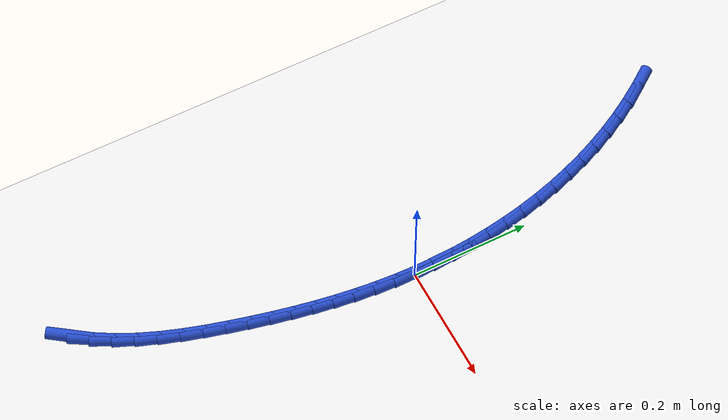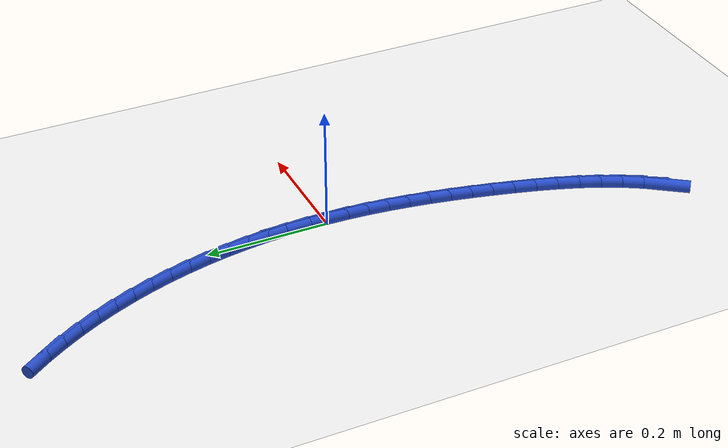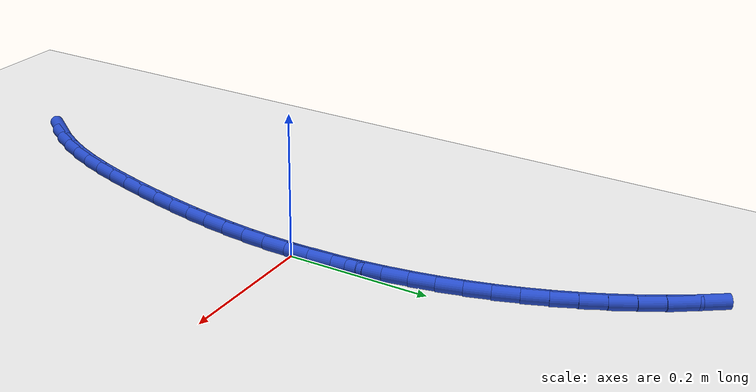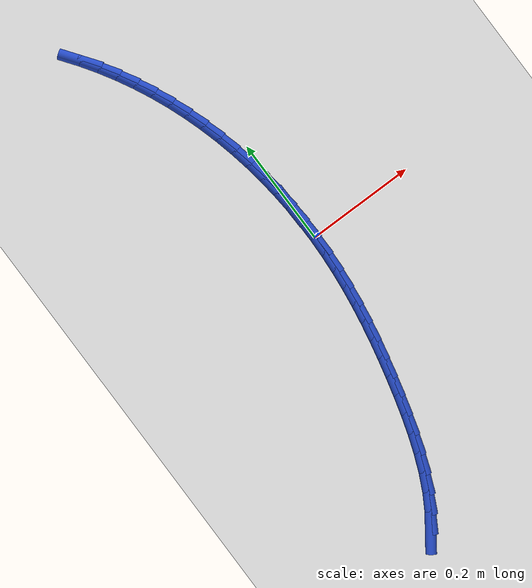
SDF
<sdf version="1.6">
 <world name="default">
  <model name="ground_plane">
   <static>1</static>
   <link name="link">
    <collision name="collision">
     <geometry><plane><normal>0 0 1</normal><size>100 100</size></plane></geometry>
     <surface><friction><ode><mu>100</mu><mu2>50</mu2></ode></friction></surface>
    </collision>
    <visual name="visual">
     <cast_shadows>0</cast_shadows>
     <geometry><plane><normal>0 0 1</normal><size>100 100</size></plane></geometry>
     <material>
      <script><uri>file://media/materials/scripts/gazebo.material</uri><name>Gazebo/WhiteGlow</name></script>
     </material>
    </visual>
   </link>
  </model>
  <model name="line">
   <link name="link_0">
    <pose>-2.5153490401663703e-17 9.020562075079397e-17 0.01 0 1.57 -1.566581821676759</pose>
    <collision name="collision">
     <geometry><cylinder><radius>0.01</radius><length>0.08</length></cylinder></geometry>
    </collision>
    <visual name="visual">
     <material>
      <script><name>Gazebo/Blue</name><uri>file://media/materials/scripts/gazebo.material</uri></script>
     </material>
     <geometry><cylinder><radius>0.01</radius><length>0.08</length></cylinder></geometry>
    </visual>
   </link>
   <link name="link_1">
    <pose>-0.00014618991644907046 0.034687121454547734 0.01 0 1.57 -1.5289425890424635</pose>
    <collision name="collision">
     <geometry><cylinder><radius>0.01</radius><length>0.08</length></cylinder></geometry>
    </collision>
    <visual name="visual">
     <material>
      <script><name>Gazebo/Blue</name><uri>file://media/materials/scripts/gazebo.material</uri></script>
     </material>
     <geometry><cylinder><radius>0.01</radius><length>0.08</length></cylinder></geometry>
    </visual>
   </link>
   <link name="link_2">
    <pose>-0.0016028432533281537 0.06947021989820973 0.01 0 1.57 -1.4912024418300496</pose>
    <collision name="collision">
     <geometry><cylinder><radius>0.01</radius><length>0.08</length></cylinder></geometry>
    </collision>
    <visual name="visual">
     <material>
      <script><name>Gazebo/Blue</name><uri>file://media/materials/scripts/gazebo.material</uri></script>
     </material>
     <geometry><cylinder><radius>0.01</radius><length>0.08</length></cylinder></geometry>
    </visual>
   </link>
   <link name="link_3">
    <pose>-0.004378318121980279 0.10426700538823463 0.01 0 1.57 -1.453205174928311</pose>
    <collision name="collision">
     <geometry><cylinder><radius>0.01</radius><length>0.08</length></cylinder></geometry>
    </collision>
    <visual name="visual">
     <material>
      <script><name>Gazebo/Blue</name><uri>file://media/materials/scripts/gazebo.material</uri></script>
     </material>
     <geometry><cylinder><radius>0.01</radius><length>0.08</length></cylinder></geometry>
    </visual>
   </link>
   <link name="link_4">
    <pose>-0.00848097263374845 0.138995187981871 0.01 0 1.57 -1.4147977861607879</pose>
    <collision name="collision">
     <geometry><cylinder><radius>0.01</radius><length>0.08</length></cylinder></geometry>
    </collision>
    <visual name="visual">
     <material>
      <script><name>Gazebo/Blue</name><uri>file://media/materials/scripts/gazebo.material</uri></script>
     </material>
     <geometry><cylinder><radius>0.01</radius><length>0.08</length></cylinder></geometry>
    </visual>
   </link>
   <link name="link_5">
    <pose>-0.013919164899975668 0.17357247773636725 0.01 0 1.57 -1.3758302296160616</pose>
    <collision name="collision">
     <geometry><cylinder><radius>0.01</radius><length>0.08</length></cylinder></geometry>
    </collision>
    <visual name="visual">
     <material>
      <script><name>Gazebo/Blue</name><uri>file://media/materials/scripts/gazebo.material</uri></script>
     </material>
     <geometry><cylinder><radius>0.01</radius><length>0.08</length></cylinder></geometry>
    </visual>
   </link>
   <link name="link_6">
    <pose>-0.020701253032004947 0.20791658470897217 0.01 0 1.57 -1.3361554402698805</pose>
    <collision name="collision">
     <geometry><cylinder><radius>0.01</radius><length>0.08</length></cylinder></geometry>
    </collision>
    <visual name="visual">
     <material>
      <script><name>Gazebo/Blue</name><uri>file://media/materials/scripts/gazebo.material</uri></script>
     </material>
     <geometry><cylinder><radius>0.01</radius><length>0.08</length></cylinder></geometry>
    </visual>
   </link>
   <link name="link_7">
    <pose>-0.028835595141179296 0.24194521895693413 0.01 0 1.57 -1.2956296958626436</pose>
    <collision name="collision">
     <geometry><cylinder><radius>0.01</radius><length>0.08</length></cylinder></geometry>
    </collision>
    <visual name="visual">
     <material>
      <script><name>Gazebo/Blue</name><uri>file://media/materials/scripts/gazebo.material</uri></script>
     </material>
     <geometry><cylinder><radius>0.01</radius><length>0.08</length></cylinder></geometry>
    </visual>
   </link>
   <link name="link_8">
    <pose>-0.03833054933884168 0.27557609053750165 0.01 0 1.57 -1.254119709960961</pose>
    <collision name="collision">
     <geometry><cylinder><radius>0.01</radius><length>0.08</length></cylinder></geometry>
    </collision>
    <visual name="visual">
     <material>
      <script><name>Gazebo/Blue</name><uri>file://media/materials/scripts/gazebo.material</uri></script>
     </material>
     <geometry><cylinder><radius>0.01</radius><length>0.08</length></cylinder></geometry>
    </visual>
   </link>
   <link name="link_9">
    <pose>-0.049194401081264896 0.30872739603644345 0.01 0 1.57 -1.211726273923208</pose>
    <collision name="collision">
     <geometry><cylinder><radius>0.01</radius><length>0.08</length></cylinder></geometry>
    </collision>
    <visual name="visual">
     <material>
      <script><name>Gazebo/Blue</name><uri>file://media/materials/scripts/gazebo.material</uri></script>
     </material>
     <geometry><cylinder><radius>0.01</radius><length>0.08</length></cylinder></geometry>
    </visual>
   </link>
   <link name="link_10">
    <pose>-0.06143296571920128 0.3413338728917935 0.01 0 1.57 -1.1686869872502963</pose>
    <collision name="collision">
     <geometry><cylinder><radius>0.01</radius><length>0.08</length></cylinder></geometry>
    </collision>
    <visual name="visual">
     <material>
      <script><name>Gazebo/Blue</name><uri>file://media/materials/scripts/gazebo.material</uri></script>
     </material>
     <geometry><cylinder><radius>0.01</radius><length>0.08</length></cylinder></geometry>
    </visual>
   </link>
   <link name="link_11">
    <pose>-0.07504904100723751 0.37335046561855495 0.01 0 1.57 -1.125028070891858</pose>
    <collision name="collision">
     <geometry><cylinder><radius>0.01</radius><length>0.08</length></cylinder></geometry>
    </collision>
    <visual name="visual">
     <material>
      <script><name>Gazebo/Blue</name><uri>file://media/materials/scripts/gazebo.material</uri></script>
     </material>
     <geometry><cylinder><radius>0.01</radius><length>0.08</length></cylinder></geometry>
    </visual>
   </link>
   <link name="link_12">
    <pose>-0.0900452411691731 0.4047333477300911 0.01 0 1.57 -1.0807691425282067</pose>
    <collision name="collision">
     <geometry><cylinder><radius>0.01</radius><length>0.08</length></cylinder></geometry>
    </collision>
    <visual name="visual">
     <material>
      <script><name>Gazebo/Blue</name><uri>file://media/materials/scripts/gazebo.material</uri></script>
     </material>
     <geometry><cylinder><radius>0.01</radius><length>0.08</length></cylinder></geometry>
    </visual>
   </link>
   <link name="link_13">
    <pose>-0.10642418042880772 0.4354386927397659 0.01 0 1.57 -1.035939811634155</pose>
    <collision name="collision">
     <geometry><cylinder><radius>0.01</radius><length>0.08</length></cylinder></geometry>
    </collision>
    <visual name="visual">
     <material>
      <script><name>Gazebo/Blue</name><uri>file://media/materials/scripts/gazebo.material</uri></script>
     </material>
     <geometry><cylinder><radius>0.01</radius><length>0.08</length></cylinder></geometry>
    </visual>
   </link>
   <link name="link_14">
    <pose>-0.124188473009941 0.465422674160943 0.01 0 1.57 -0.9905801278837809</pose>
    <collision name="collision">
     <geometry><cylinder><radius>0.01</radius><length>0.08</length></cylinder></geometry>
    </collision>
    <visual name="visual">
     <material>
      <script><name>Gazebo/Blue</name><uri>file://media/materials/scripts/gazebo.material</uri></script>
     </material>
     <geometry><cylinder><radius>0.01</radius><length>0.08</length></cylinder></geometry>
    </visual>
   </link>
   <link name="link_15">
    <pose>-0.1433407331363724 0.494641465506986 0.01 0 1.57 -0.9447408046540455</pose>
    <collision name="collision">
     <geometry><cylinder><radius>0.01</radius><length>0.08</length></cylinder></geometry>
    </collision>
    <visual name="visual">
     <material>
      <script><name>Gazebo/Blue</name><uri>file://media/materials/scripts/gazebo.material</uri></script>
     </material>
     <geometry><cylinder><radius>0.01</radius><length>0.08</length></cylinder></geometry>
    </visual>
   </link>
   <link name="link_194">
    <pose>-0.1474101521458303 -0.5340954955599487 0.01 0 1.57 0.9484944572847146</pose>
    <collision name="collision">
     <geometry><cylinder><radius>0.01</radius><length>0.08</length></cylinder></geometry>
    </collision>
    <visual name="visual">
     <material>
      <script><name>Gazebo/Blue</name><uri>file://media/materials/scripts/gazebo.material</uri></script>
     </material>
     <geometry><cylinder><radius>0.01</radius><length>0.08</length></cylinder></geometry>
    </visual>
   </link>
   <link name="link_195">
    <pose>-0.1274312375348535 -0.5062460405375817 0.01 0 1.57 1.0378418548993338</pose>
    <collision name="collision">
     <geometry><cylinder><radius>0.01</radius><length>0.08</length></cylinder></geometry>
    </collision>
    <visual name="visual">
     <material>
      <script><name>Gazebo/Blue</name><uri>file://media/materials/scripts/gazebo.material</uri></script>
     </material>
     <geometry><cylinder><radius>0.01</radius><length>0.08</length></cylinder></geometry>
    </visual>
   </link>
   <link name="link_196">
    <pose>-0.10983755748766393 -0.4764208169041391 0.01 0 1.57 1.1136807100409913</pose>
    <collision name="collision">
     <geometry><cylinder><radius>0.01</radius><length>0.08</length></cylinder></geometry>
    </collision>
    <visual name="visual">
     <material>
      <script><name>Gazebo/Blue</name><uri>file://media/materials/scripts/gazebo.material</uri></script>
     </material>
     <geometry><cylinder><radius>0.01</radius><length>0.08</length></cylinder></geometry>
    </visual>
   </link>
   <link name="link_197">
    <pose>-0.0943613755796027 -0.44495630358976923 0.01 0 1.57 1.1766979238736979</pose>
    <collision name="collision">
     <geometry><cylinder><radius>0.01</radius><length>0.08</length></cylinder></geometry>
    </collision>
    <visual name="visual">
     <material>
      <script><name>Gazebo/Blue</name><uri>file://media/materials/scripts/gazebo.material</uri></script>
     </material>
     <geometry><cylinder><radius>0.01</radius><length>0.08</length></cylinder></geometry>
    </visual>
   </link>
   <link name="link_198">
    <pose>-0.0807349553860097 -0.41218897952461825 0.01 0 1.57 1.2278601823866246</pose>
    <collision name="collision">
     <geometry><cylinder><radius>0.01</radius><length>0.08</length></cylinder></geometry>
    </collision>
    <visual name="visual">
     <material>
      <script><name>Gazebo/Blue</name><uri>file://media/materials/scripts/gazebo.material</uri></script>
     </material>
     <geometry><cylinder><radius>0.01</radius><length>0.08</length></cylinder></geometry>
    </visual>
   </link>
   <link name="link_199">
    <pose>-0.06869056048222522 -0.3784553236388328 0.01 0 1.57 1.2681365698759766</pose>
    <collision name="collision">
     <geometry><cylinder><radius>0.01</radius><length>0.08</length></cylinder></geometry>
    </collision>
    <visual name="visual">
     <material>
      <script><name>Gazebo/Blue</name><uri>file://media/materials/scripts/gazebo.material</uri></script>
     </material>
     <geometry><cylinder><radius>0.01</radius><length>0.08</length></cylinder></geometry>
    </visual>
   </link>
   <link name="link_200">
    <pose>-0.0579604544435896 -0.3440918148625598 0.01 0 1.57 1.2983328339056213</pose>
    <collision name="collision">
     <geometry><cylinder><radius>0.01</radius><length>0.08</length></cylinder></geometry>
    </collision>
    <visual name="visual">
     <material>
      <script><name>Gazebo/Blue</name><uri>file://media/materials/scripts/gazebo.material</uri></script>
     </material>
     <geometry><cylinder><radius>0.01</radius><length>0.08</length></cylinder></geometry>
    </visual>
   </link>
   <link name="link_201">
    <pose>-0.04827690084544315 -0.30943493212594614 0.01 0 1.57 1.319376936712057</pose>
    <collision name="collision">
     <geometry><cylinder><radius>0.01</radius><length>0.08</length></cylinder></geometry>
    </collision>
    <visual name="visual">
     <material>
      <script><name>Gazebo/Blue</name><uri>file://media/materials/scripts/gazebo.material</uri></script>
     </material>
     <geometry><cylinder><radius>0.01</radius><length>0.08</length></cylinder></geometry>
    </visual>
   </link>
   <link name="link_202">
    <pose>-0.03938308991113787 -0.274809047595478 0.01 0 1.57 1.3377620894517483</pose>
    <collision name="collision">
     <geometry><cylinder><radius>0.01</radius><length>0.08</length></cylinder></geometry>
    </collision>
    <visual name="visual">
     <material>
      <script><name>Gazebo/Blue</name><uri>file://media/materials/scripts/gazebo.material</uri></script>
     </material>
     <geometry><cylinder><radius>0.01</radius><length>0.08</length></cylinder></geometry>
    </visual>
   </link>
   <link name="link_203">
    <pose>-0.03120186679639867 -0.2403394751533298 0.01 0 1.57 1.358650418880572</pose>
    <collision name="collision">
     <geometry><cylinder><radius>0.01</radius><length>0.08</length></cylinder></geometry>
    </collision>
    <visual name="visual">
     <material>
      <script><name>Gazebo/Blue</name><uri>file://media/materials/scripts/gazebo.material</uri></script>
     </material>
     <geometry><cylinder><radius>0.01</radius><length>0.08</length></cylinder></geometry>
    </visual>
   </link>
   <link name="link_204">
    <pose>-0.02380313630836346 -0.2059885860810133 0.01 0 1.57 1.3821945628157863</pose>
    <collision name="collision">
     <geometry><cylinder><radius>0.01</radius><length>0.08</length></cylinder></geometry>
    </collision>
    <visual name="visual">
     <material>
      <script><name>Gazebo/Blue</name><uri>file://media/materials/scripts/gazebo.material</uri></script>
     </material>
     <geometry><cylinder><radius>0.01</radius><length>0.08</length></cylinder></geometry>
    </visual>
   </link>
   <link name="link_205">
    <pose>-0.01726112883022979 -0.17171395890685737 0.01 0 1.57 1.408369493025649</pose>
    <collision name="collision">
     <geometry><cylinder><radius>0.01</radius><length>0.08</length></cylinder></geometry>
    </collision>
    <visual name="visual">
     <material>
      <script><name>Gazebo/Blue</name><uri>file://media/materials/scripts/gazebo.material</uri></script>
     </material>
     <geometry><cylinder><radius>0.01</radius><length>0.08</length></cylinder></geometry>
    </visual>
   </link>
   <link name="link_206">
    <pose>-0.01165007474519526 -0.1374731721591911 0.01 0 1.57 1.4371178870464514</pose>
    <collision name="collision">
     <geometry><cylinder><radius>0.01</radius><length>0.08</length></cylinder></geometry>
    </collision>
    <visual name="visual">
     <material>
      <script><name>Gazebo/Blue</name><uri>file://media/materials/scripts/gazebo.material</uri></script>
     </material>
     <geometry><cylinder><radius>0.01</radius><length>0.08</length></cylinder></geometry>
    </visual>
   </link>
   <link name="link_207">
    <pose>-0.00704420443645744 -0.10322380436634325 0.01 0 1.57 1.4683452651286175</pose>
    <collision name="collision">
     <geometry><cylinder><radius>0.01</radius><length>0.08</length></cylinder></geometry>
    </collision>
    <visual name="visual">
     <material>
      <script><name>Gazebo/Blue</name><uri>file://media/materials/scripts/gazebo.material</uri></script>
     </material>
     <geometry><cylinder><radius>0.01</radius><length>0.08</length></cylinder></geometry>
    </visual>
   </link>
   <link name="link_208">
    <pose>-0.0035177482872139083 -0.06892343405664282 0.01 0 1.57 1.5019159412513923</pose>
    <collision name="collision">
     <geometry><cylinder><radius>0.01</radius><length>0.08</length></cylinder></geometry>
    </collision>
    <visual name="visual">
     <material>
      <script><name>Gazebo/Blue</name><uri>file://media/materials/scripts/gazebo.material</uri></script>
     </material>
     <geometry><cylinder><radius>0.01</radius><length>0.08</length></cylinder></geometry>
    </visual>
   </link>
   <link name="link_209">
    <pose>-0.0011449366806621998 -0.034529639758417906 0.01 0 1.57 1.5376503871964244</pose>
    <collision name="collision">
     <geometry><cylinder><radius>0.01</radius><length>0.08</length></cylinder></geometry>
    </collision>
    <visual name="visual">
     <material>
      <script><name>Gazebo/Blue</name><uri>file://media/materials/scripts/gazebo.material</uri></script>
     </material>
     <geometry><cylinder><radius>0.01</radius><length>0.08</length></cylinder></geometry>
    </visual>
   </link>
   <link name="link_210">
    <pose>-2.168404344971009e-17 9.71445146547012e-17 0.01 0 1.57 -1.5662680342777031</pose>
    <collision name="collision">
     <geometry><cylinder><radius>0.01</radius><length>0.08</length></cylinder></geometry>
    </collision>
    <visual name="visual">
     <material>
      <script><name>Gazebo/Blue</name><uri>file://media/materials/scripts/gazebo.material</uri></script>
     </material>
     <geometry><cylinder><radius>0.01</radius><length>0.08</length></cylinder></geometry>
    </visual>
   </link>
   <link name="link_211">
    <pose>-0.00015716862842482613 0.0347079066902847 0.01 0 1.57 -1.526920523955584</pose>
    <collision name="collision">
     <geometry><cylinder><radius>0.01</radius><length>0.08</length></cylinder></geometry>
    </collision>
    <visual name="visual">
     <material>
      <script><name>Gazebo/Blue</name><uri>file://media/materials/scripts/gazebo.material</uri></script>
     </material>
     <geometry><cylinder><radius>0.01</radius><length>0.08</length></cylinder></geometry>
    </visual>
   </link>
   <link name="link_212">
    <pose>-0.001690672949134337 0.0696365017841078 0.01 0 1.57 -1.546522550320312</pose>
    <collision name="collision">
     <geometry><cylinder><radius>0.01</radius><length>0.08</length></cylinder></geometry>
    </collision>
    <visual name="visual">
     <material>
      <script><name>Gazebo/Blue</name><uri>file://media/materials/scripts/gazebo.material</uri></script>
     </material>
     <geometry><cylinder><radius>0.01</radius><length>0.08</length></cylinder></geometry>
    </visual>
   </link>
  </model>
 </world>
</sdf>
